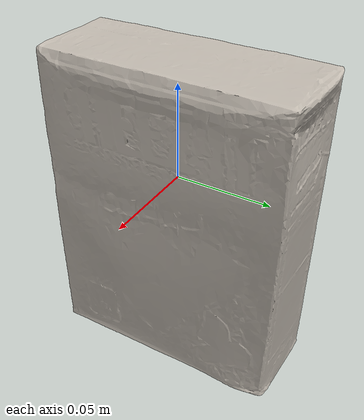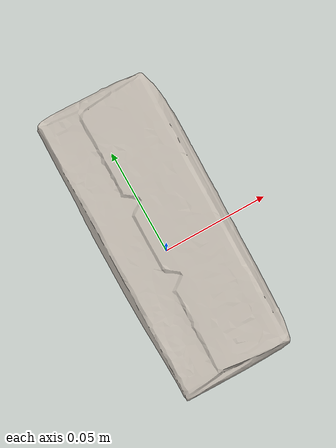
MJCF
<mujoco model="bread">
  <asset>
    <mesh file="nontextured.stl" name="obj_mesh" scale="0.8 0.8 0.8"/>
    <texture file="../../../../../textures/bread.png" type="2d" name="tex-bread" />
    <material name="bread" reflectance="0.7" texrepeat="15 15" texture="tex-bread" texuniform="true"/>
  </asset>
  <worldbody>
    <body>
      <body name="collision">
        <geom pos="0.012885 0.014141999999999995 -0.1034755" mesh="obj_mesh" type="mesh" solimp="0.998 0.998 0.001" solref="0.001 1" density="50" friction="0.95 0.3 0.1"  material="bread" group="1" condim="4"/>
      </body>
      <body name="visual">
        <geom pos="0.012885 0.014141999999999995 -0.1034755" mesh="obj_mesh" type="mesh" material="bread"  conaffinity="0" contype="0"  group="0" mass="0.0001"/>
        <geom pos="0.012885 0.014141999999999995 -0.1034755" mesh="obj_mesh" type="mesh" material="bread"  conaffinity="0" contype="0"  group="1" mass="0.0001"/>
      </body>
      <site rgba="0 0 0 0" size="0.005" pos="0 0 -0.1067185" name="bottom_site"/>
      <site rgba="0 0 0 0" size="0.005" pos="0 0 0.1067185" name="top_site"/>
      <site rgba="0 0 0 0" size="0.005" pos="0.0359 0.08201800000000001 0.1067185" name="horizontal_radius_site"/>
    </body>
  </worldbody>
</mujoco>
